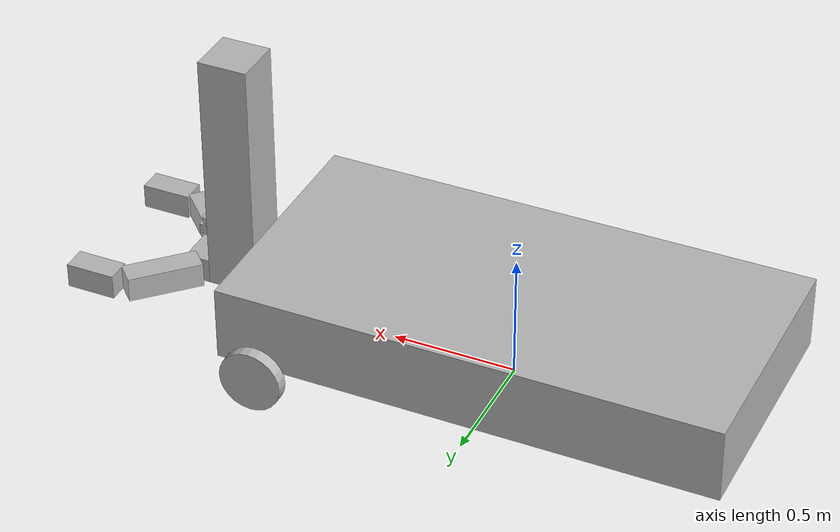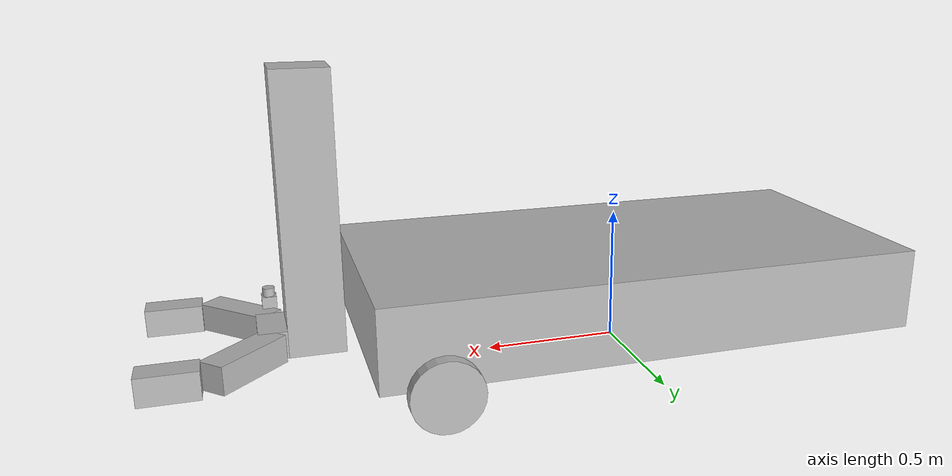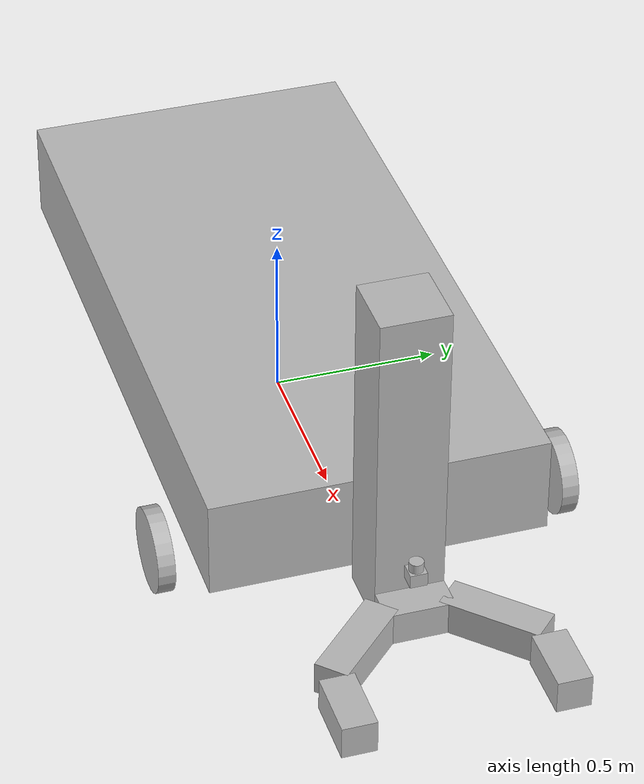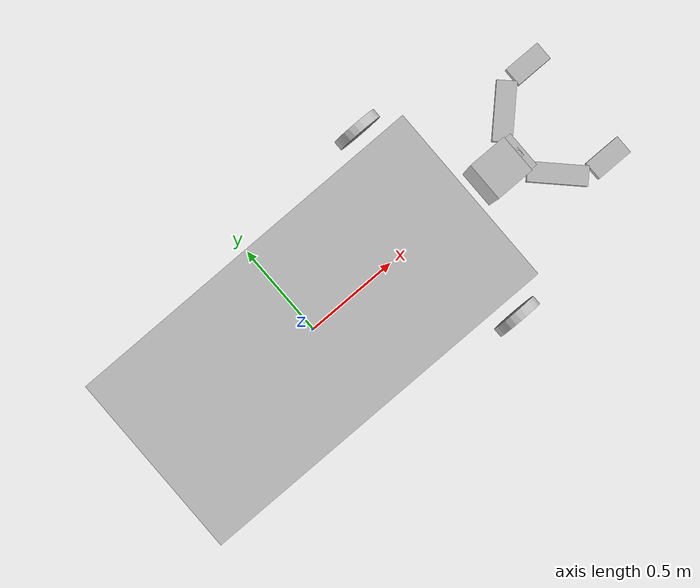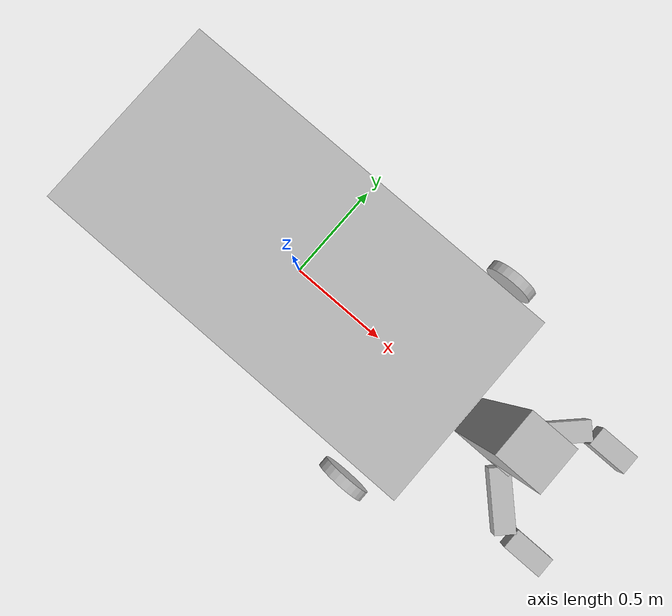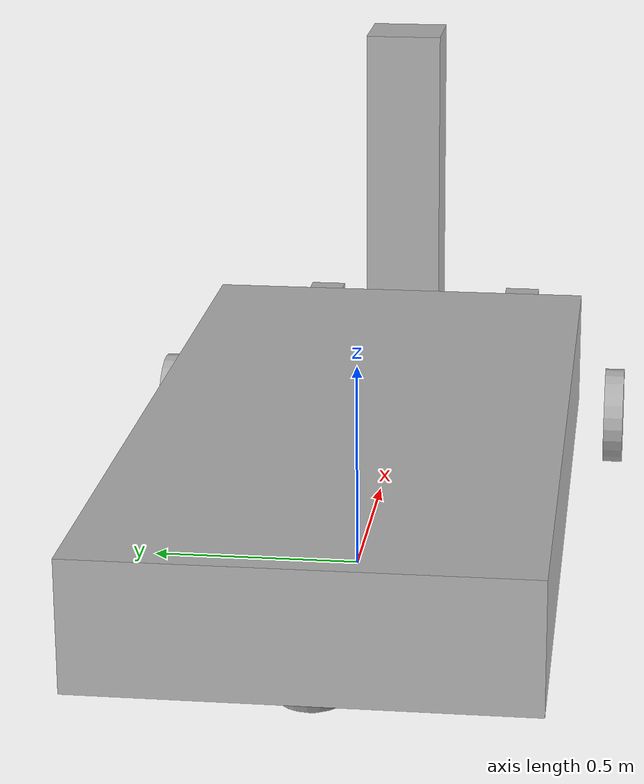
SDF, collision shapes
<?xml version="1.0" ?>
<sdf version="1.3">
  <model name="simple_mobile_manipulator">

    <include>
      <uri>model://my_gripper</uri>
      <pose>1.3 0 0.1 0 0 0</pose>
    </include>

    <include>
      <uri>model://my_robot</uri>
      <pose>0 0 0 0 0 0</pose>
    </include>

    <joint name="arm_gripper_joint" type="revolute">
      <parent>mobile_base::chassis</parent>
      <child>simple_gripper::riser</child>
      <axis>
        <limit>
          <lower>0</lower>
          <upper>0</upper>
        </limit>
        <xyz>0 0 1</xyz>
      </axis>
    </joint>

    <!-- attach sensor to the gripper -->
    <include>
      <uri>model://hokuyo</uri>
      <pose>1.3 0 0.3 0 0 0</pose>
    </include>

    <joint name="hokuyo_joint" type="revolute">
      <child>hokuyo::link</child>
      <parent>simple_gripper::palm</parent>
      <axis>
        <xyz>0 0 1</xyz>
        <limit>
          <upper>0</upper>
          <lower>0</lower>
        </limit>
      </axis>
    </joint>

  </model>
</sdf>

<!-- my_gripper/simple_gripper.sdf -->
<sdf version="1.4">
    <model name="simple_gripper">
        <link name="riser">
            <pose>-0.15 0.0 0.5 0 0 0</pose>
            <inertial>
                <pose>0 0 -0.5 0 0 0</pose>
                <inertia>
                    <ixx>0.01</ixx>
                    <ixy>0</ixy>
                    <ixz>0</ixz>
                    <iyy>0.01</iyy>
                    <iyz>0</iyz>
                    <izz>0.01</izz>
                </inertia>
                <mass>10.0</mass>
            </inertial>
            <collision name="collision">
                <geometry>
                    <box>
                        <size>0.2 0.2 1.0</size>
                    </box>
                </geometry>
            </collision>
            <visual name="visual">
                <geometry>
                    <box>
                        <size>0.2 0.2 1.0</size>
                    </box>
                </geometry>
                <material>
                    <script>Gazebo/Purple</script>
                </material>
            </visual>
        </link>
        <link name="palm">
            <pose>0.0 0.0 0.05 0 0 0</pose>
            <inertial>
                <inertia>
                    <ixx>0.01</ixx>
                    <ixy>0</ixy>
                    <ixz>0</ixz>
                    <iyy>0.01</iyy>
                    <iyz>0</iyz>
                    <izz>0.01</izz>
                </inertia>
                <mass>0.5</mass>
            </inertial>
            <collision name="collision">
                <geometry>
                    <box>
                        <size>0.1 0.2 0.1</size>
                    </box>
                </geometry>
            </collision>
            <visual name="visual">
                <geometry>
                    <box>
                        <size>0.1 0.2 0.1</size>
                    </box>
                </geometry>
                <material>
                    <script>Gazebo/Red</script>
                </material>
            </visual>
        </link>
        <link name="left_finger">
            <pose>0.1 0.2 0.05 0 0 -0.78539</pose>
            <inertial>
                <inertia>
                    <ixx>0.01</ixx>
                    <ixy>0</ixy>
                    <ixz>0</ixz>
                    <iyy>0.01</iyy>
                    <iyz>0</iyz>
                    <izz>0.01</izz>
                </inertia>
                <mass>0.1</mass>
            </inertial>
            <collision name="collision">
                <geometry>
                    <box>
                        <size>0.1 0.3 0.1</size>
                    </box>
                </geometry>
            </collision>
            <visual name="visual">
                <geometry>
                    <box>
                        <size>0.1 0.3 0.1</size>
                    </box>
                </geometry>
                <material>
                    <script>Gazebo/Blue</script>
                </material>
            </visual>
        </link>
        <link name="left_finger_tip">
            <pose>0.336 0.3 0.05 0 0 1.5707</pose>
            <inertial>
                <inertia>
                    <ixx>0.01</ixx>
                    <ixy>0</ixy>
                    <ixz>0</ixz>
                    <iyy>0.01</iyy>
                    <iyz>0</iyz>
                    <izz>0.01</izz>
                </inertia>
                <mass>0.1</mass>
            </inertial>
            <collision name="collision">
                <geometry>
                    <box>
                        <size>0.1 0.2 0.1</size>
                    </box>
                </geometry>
            </collision>
            <visual name="visual">
                <geometry>
                    <box>
                        <size>0.1 0.2 0.1</size>
                    </box>
                </geometry>
                <material>
                    <script>Gazebo/Blue</script>
                </material>
            </visual>
        </link>
        <link name="right_finger">
            <pose>0.1 -0.2 0.05 0 0 .78539</pose>
            <inertial>
                <inertia>
                    <ixx>0.01</ixx>
                    <ixy>0</ixy>
                    <ixz>0</ixz>
                    <iyy>0.01</iyy>
                    <iyz>0</iyz>
                    <izz>0.01</izz>
                </inertia>
                <mass>0.1</mass>
            </inertial>
            <collision name="collision">
                <geometry>
                    <box>
                        <size>0.1 0.3 0.1</size>
                    </box>
                </geometry>
            </collision>
            <visual name="visual">
                <geometry>
                    <box>
                        <size>0.1 0.3 0.1</size>
                    </box>
                </geometry>
                <material>
                    <script>Gazebo/Green</script>
                </material>
            </visual>
        </link>
        <link name="right_finger_tip">
            <pose>0.336 -0.3 0.05 0 0 1.5707</pose>
            <inertial>
                <inertia>
                    <ixx>0.01</ixx>
                    <ixy>0</ixy>
                    <ixz>0</ixz>
                    <iyy>0.01</iyy>
                    <iyz>0</iyz>
                    <izz>0.01</izz>
                </inertia>
                <mass>0.1</mass>
            </inertial>
            <collision name="collision">
                <geometry>
                    <box>
                        <size>0.1 0.2 0.1</size>
                    </box>
                </geometry>
            </collision>
            <visual name="visual">
                <geometry>
                    <box>
                        <size>0.1 0.2 0.1</size>
                    </box>
                </geometry>
                <material>
                    <script>Gazebo/Green</script>
                </material>
            </visual>
        </link>
        <static>false</static>

        <joint name="palm_left_finger" type="revolute">
            <pose>0 -0.15 0 0 0 0</pose>
            <child>left_finger</child>
            <parent>palm</parent>
            <axis>
                <limit>
                    <lower>-0.4</lower>
                    <upper>0.4</upper>
                </limit>
                <xyz>0 0 1</xyz>
            </axis>
        </joint>
        <joint name="left_finger_tip" type="revolute">
            <pose>0 0.1 0 0 0 0</pose>
            <child>left_finger_tip</child>
            <parent>left_finger</parent>
            <axis>
                <limit>
                    <lower>-0.4</lower>
                    <upper>0.4</upper>
                </limit>
                <xyz>0 0 1</xyz>
            </axis>
        </joint>
        <joint name="palm_right_finger" type="revolute">
            <pose>0 0.15 0 0 0 0</pose>
            <child>right_finger</child>
            <parent>palm</parent>
            <axis>
                <limit>
                    <lower>-0.4</lower>
                    <upper>0.4</upper>
                </limit>
                <xyz>0 0 1</xyz>
            </axis>
        </joint>
        <joint name="right_finger_tip" type="revolute">
            <pose>0 0.1 0 0 0 0</pose>
            <child>right_finger_tip</child>
            <parent>right_finger</parent>
            <axis>
                <limit>
                    <lower>-0.4</lower>
                    <upper>0.4</upper>
                </limit>
                <xyz>0 0 1</xyz>
            </axis>
        </joint>
        <joint name="palm_riser" type="prismatic">
            <child>palm</child>
            <parent>riser</parent>
            <axis>
                <limit>
                    <lower>0</lower>
                    <upper>0.9</upper>
                </limit>
                <xyz>0 0 1</xyz>
            </axis>
        </joint>
    </model>
</sdf>

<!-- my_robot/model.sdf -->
<sdf version='1.4'>
  <model name="mobile_base">
    <link name='chassis'>
      <pose>0 0 .25 0 0 0</pose>

      <inertial>
        <mass>20.0</mass>
        <pose>-0.1 0 -0.1 0 0 0</pose>
        <inertia>
          <ixx>0.5</ixx>
          <iyy>1.0</iyy>
          <izz>0.1</izz>
        </inertia>
      </inertial>

      <collision name='collision'>
        <geometry>
          <box>
            <size>2 1 0.3</size>
          </box>
        </geometry>
      </collision>

      <visual name='visual'>
        <geometry>
          <box>
            <size>2 1 0.3</size>
          </box>
        </geometry>
      </visual>

      <collision name='caster_collision'>
        <pose>-0.8 0 -0.125 0 0 0</pose>
        <geometry>
          <sphere>
            <radius>.125</radius>
          </sphere>
        </geometry>

        <surface>
          <friction>
            <ode>
              <mu>0</mu>
              <mu2>0</mu2>
            </ode>
          </friction>
        </surface>
      </collision>

      <visual name='caster_visual'>
        <pose>-0.8 0 -0.125 0 0 0</pose>
        <geometry>
          <sphere>
            <radius>.125</radius>
          </sphere>
        </geometry>
      </visual>
    </link>
    <link name="left_wheel">
      <pose>0.8 0.6 0.125 0 1.5707 1.5707</pose>
      <collision name="collision">
        <geometry>
          <cylinder>
            <radius>.125</radius>
            <length>.05</length>
          </cylinder>
        </geometry>
      </collision>
      <visual name="visual">
        <geometry>
          <cylinder>
            <radius>.125</radius>
            <length>.05</length>
          </cylinder>
        </geometry>
      </visual>
    </link>

    <link name="right_wheel">
      <pose>0.8 -0.6 0.125 0 1.5707 1.5707</pose>
      <collision name="collision">
        <geometry>
          <cylinder>
            <radius>.125</radius>
            <length>.05</length>
          </cylinder>
        </geometry>
      </collision>
      <visual name="visual">
        <geometry>
          <cylinder>
            <radius>.125</radius>
            <length>.05</length>
          </cylinder>
        </geometry>
      </visual>
    </link>

    <joint type="revolute" name="left_wheel_hinge">
      <pose>0 0 -0.03 0 0 0</pose>
      <child>left_wheel</child>
      <parent>chassis</parent>
      <axis>
        <xyz>0 1 0</xyz>
      </axis>
    </joint>

    <joint type="revolute" name="right_wheel_hinge">
      <pose>0 0 0.03 0 0 0</pose>
      <child>right_wheel</child>
      <parent>chassis</parent>
      <axis>
        <xyz>0 1 0</xyz>
      </axis>
    </joint>

  </model>
 </sdf>

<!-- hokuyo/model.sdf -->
<sdf version="1.5">
  <model name="hokuyo">
    <pose>0 0 0.035 0 0 0</pose>
    <link name="link">
      <inertial>
        <mass>0.1</mass>
      </inertial>
      <visual name="visual">
        <geometry>
          <mesh>
            <uri>model://../model_source/models/hokuyo/meshes/hokuyo.dae</uri>
          </mesh>
        </geometry>
      </visual>
      <collision name="collision-base">
        <pose>0 0 -0.0145 0 0 0</pose>
        <geometry>
          <box>
            <size>0.05 0.05 0.041</size>
          </box>
        </geometry>
      </collision>
      <collision name="collision-top">
        <pose>0 0 0.0205 0 0 0</pose>
        <geometry>
          <cylinder>
            <radius>0.021</radius>
            <length>0.029</length>
          </cylinder>
        </geometry>
      </collision>
      <sensor name="laser" type="ray">
        <pose>0.01 0 0.0175 0 -0 0</pose>
        <ray>
          <scan>
            <horizontal>
              <samples>640</samples>
              <resolution>1</resolution>
              <min_angle>-2.26889</min_angle>
              <max_angle>2.268899</max_angle>
            </horizontal>
          </scan>
          <range>
            <min>0.08</min>
            <max>10</max>
            <resolution>0.01</resolution>
          </range>
        </ray>
        <plugin name="laser" filename="libRayPlugin.so" />
        <always_on>1</always_on>
        <update_rate>30</update_rate>
        <visualize>true</visualize>
      </sensor>
    </link>
  </model>
</sdf>
